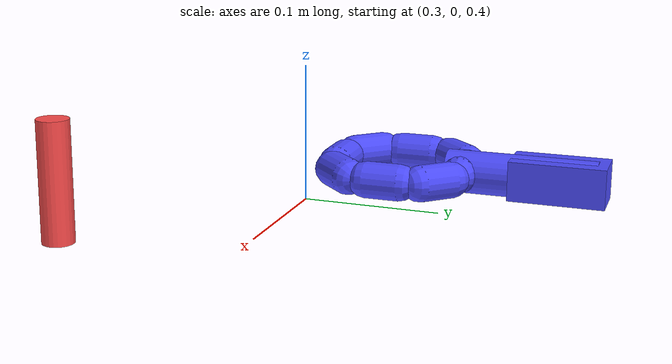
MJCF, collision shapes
<?xml version="1.0"?>
<mujoco model="assembly">
  <compiler angle="radian" autolimits="true"/>

  <asset>
    <texture name="T_asmbly_met" type="cube" file="textures/metal1.png"/>
    <material name="asmbly_col" rgba="0.3 0.3 1.0 0.5" shininess="0" specular="0"/>
    <material name="asmbly_green" rgba="0 .5 0 1" shininess="1" reflectance=".7" specular=".5"/>
    <material name="asmbly_metal" rgba=".65 .65 .65 1" texture="T_asmbly_met" shininess="1" reflectance=".7" specular=".5"/>

    <mesh name="assembly_peg_handle" file="objects/assembly/meshes/assembly_peg_handle.stl" scale="0.75 0.75 0.75"/>
    <mesh name="assembly_peg_ring" file="objects/assembly/meshes/assembly_peg_ring.stl" scale="0.75 0.75 0.75"/>
    <mesh name="assembly_peg_rod" file="objects/assembly/meshes/assembly_peg_rod.stl" scale="0.75 0.75 0.75"/>
  </asset>

  <default>
    <default class="asmbly_base">
      <joint armature="0.001" damping="2" limited="true"/>
      <geom conaffinity="0" contype="0" group="1" type="mesh"/>
    </default>
    <default class="asmbly_col">
      <geom conaffinity="1" condim="4" contype="1" group="4" material="asmbly_col"
            friction="2.0 0.05 0.01" solimp="0.995 0.999 0.0005" solref="0.008 1"/>
    </default>
  </default>

  <worldbody>
    <!-- RoundNut (扳手/圆环) - 可被抓取移动 -->
    <body name="round_nut" pos="0.4 0.1 0.46" euler="0 0 3.1416" childclass="asmbly_base">
      <freejoint name="round_nut:joint"/>
      <inertial mass="0.12" pos="0 0 0" diaginertia="0.0025 0.0025 0.0025"/>

      <!-- Visual meshes -->
      <geom material="asmbly_metal" mesh="assembly_peg_ring"/>
      <geom material="asmbly_green" mesh="assembly_peg_handle" pos="0 -0.0975 0" name="WrenchHandle"/>
      <geom material="asmbly_metal" euler="1.57 0 0" pos="0 -0.075 0" size="0.009 0.0375" type="cylinder"/>

      <!-- Collision geoms (ring perimeter capsules) -->
      <geom class="asmbly_col" euler="1.57 0 0" pos="0.039 0 0" size="0.011 0.0105" type="capsule" mass=".02"/>
      <geom class="asmbly_col" euler="0 1.57 0" pos="0 0.039 0" size="0.011 0.0105" type="capsule" mass=".02"/>
      <geom class="asmbly_col" euler="1.57 0.785 0.785" pos="0.0295 0.0295 0" size="0.011 0.0105" type="capsule" mass=".02"/>
      <geom class="asmbly_col" euler="1.57 0 0" pos="-0.039 0.0 0.0" size="0.011 0.0105" type="capsule" mass=".02"/>
      <geom class="asmbly_col" euler="0 1.57 0" pos="0.0 -0.039 0.0" size="0.011 0.0105" type="capsule" mass=".02"/>
      <geom class="asmbly_col" euler="1.57 -0.785 -0.785" pos="-0.0295 0.0295 0" size="0.011 0.0105" type="capsule" mass=".02"/>
      <geom class="asmbly_col" euler="1.57 0.785 0.785" pos="-0.0295 -0.0295 0" size="0.011 0.0105" type="capsule" mass=".02"/>
      <geom class="asmbly_col" euler="1.57 -0.785 -0.785" pos="0.0295 -0.0295 0" size="0.011 0.0105" type="capsule" mass=".02"/>
      <!-- Handle collision -->
      <geom class="asmbly_col" pos="0 -0.0975 0" size="0.01425 0.0285 0.012" type="box" mass=".04"/>
      <!-- Rod collision -->
      <geom class="asmbly_col" euler="1.57 0 0" pos="0 -0.075 0" size="0.013 0.045" type="cylinder" mass=".02"/>
    </body>

    <!-- Peg (圆柱销) - 静态固定在桌面上 -->
    <body name="peg" pos="0.4 -0.15 0.425">
      <geom material="asmbly_metal" pos="0 0 0" rgba="1 0.3 0.3 1" size="0.012 0.045" type="cylinder"
            conaffinity="1" contype="1" group="1" friction="1 0.005 0.0001"/>
      <site name="pegTop" pos="0 0 0.0375" size="0.00375" rgba="0 0.8 0 1"/>
    </body>
  </worldbody>
</mujoco>
